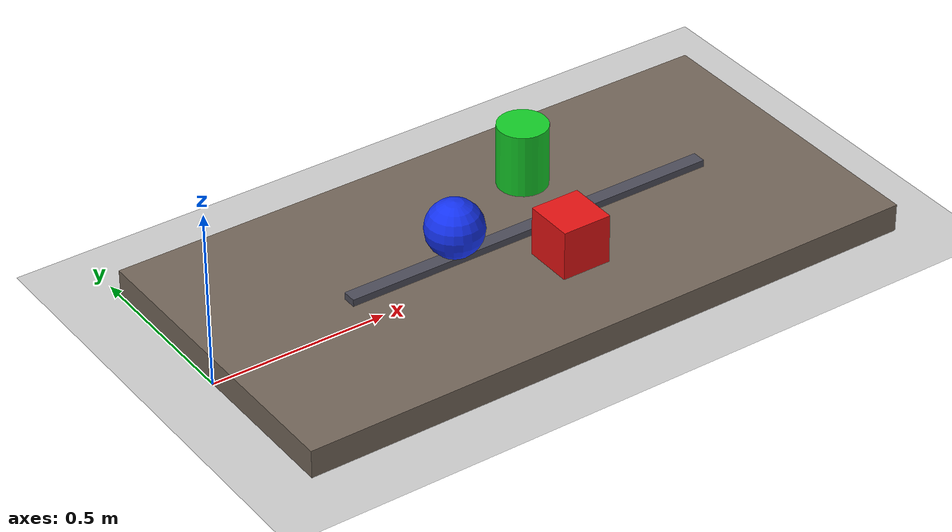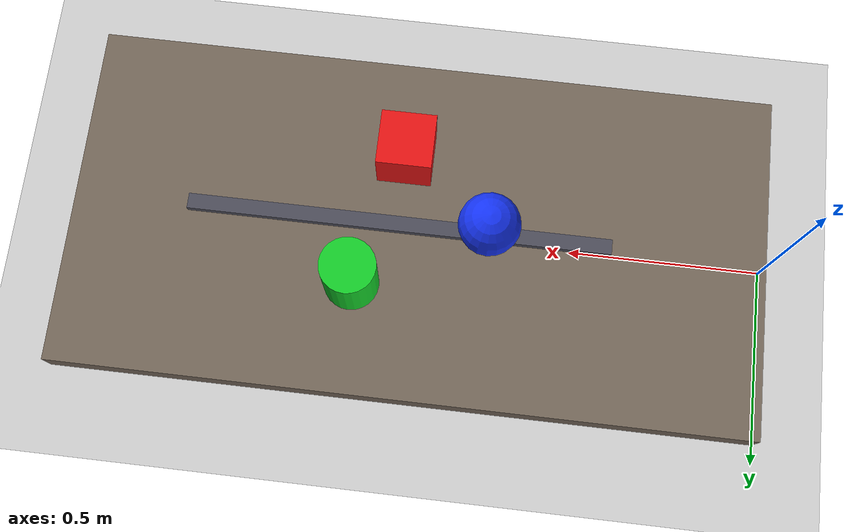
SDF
<sdf version="1.7">
 <world name="weld_cell">
  <gravity>0 0 -9.8</gravity>
  <magnetic_field>0 0 0</magnetic_field>
  <atmosphere type="adiabatic"/>
  <physics name="physics" type="dart">
   <max_step_size>0.001</max_step_size>
   <real_time_factor>1.0</real_time_factor>
  </physics>
  <plugin filename="gz-sim-physics-system" name="gz::sim::systems::Physics"/>
  <plugin filename="gz-sim-sensors-system" name="gz::sim::systems::Sensors">
   <render_engine>ogre2</render_engine>
  </plugin>
  <plugin filename="gz-sim-user-commands-system" name="gz::sim::systems::UserCommands"/>
  <plugin filename="gz-sim-scene-broadcaster-system" name="gz::sim::systems::SceneBroadcaster"/>
  <scene><ambient>1.0 1.0 1.0</ambient><background>0.8 0.8 0.8</background><grid>true</grid></scene>
  <light type="directional" name="sun">
   <pose>0 0 10 0 0 0</pose>
   <diffuse>0.8 0.8 0.8 1</diffuse>
   <specular>0.2 0.2 0.2 1</specular>
   <attenuation>
    <range>1000</range>
    <constant>0.9</constant>
    <linear>0.01</linear>
    <quadratic>0.001</quadratic>
   </attenuation>
   <direction>-0.5 0.1 -0.9</direction>
  </light>
  <model name="ground_plane">
   <static>true</static>
   <link name="link">
    <collision name="collision">
     <geometry><plane><normal>0 0 1</normal><size>100 100</size></plane></geometry>
    </collision>
    <visual name="visual">
     <geometry><plane><normal>0 0 1</normal><size>100 100</size></plane></geometry>
     <material><ambient>0.8 0.8 0.8 1</ambient><diffuse>0.8 0.8 0.8 1</diffuse></material>
    </visual>
   </link>
  </model>
  <model name="weld_table">
   <static>true</static>
   <link name="link">
    <visual name="visual">
     <geometry><box><size>1.8 0.9 0.08</size></box></geometry>
     <pose>0.9 0 0.04 0 0 0</pose>
     <material><ambient>0.25 0.22 0.2 1</ambient><diffuse>0.45 0.4 0.35 1</diffuse></material>
    </visual>
    <collision name="collision">
     <geometry><box><size>1.8 0.9 0.08</size></box></geometry>
     <pose>0.9 0 0.04 0 0 0</pose>
    </collision>
   </link>
  </model>
  <model name="weld_beam">
   <static>true</static>
   <link name="link">
    <visual name="visual">
     <geometry><box><size>1.1 0.04 0.02</size></box></geometry>
     <pose>0.95 0 0.09 0 0 0</pose>
     <material><ambient>0.15 0.15 0.18 1</ambient><diffuse>0.3 0.3 0.35 1</diffuse></material>
    </visual>
    <collision name="collision">
     <geometry><box><size>1.1 0.04 0.02</size></box></geometry>
     <pose>0.95 0 0.09 0 0 0</pose>
    </collision>
   </link>
  </model>
  <model name="camera_target_box_red">
   <static>true</static>
   <pose>0.95 -0.18 0.17 0 0 0</pose>
   <link name="link">
    <visual name="visual">
     <geometry><box><size>0.14 0.14 0.14</size></box></geometry>
     <material><ambient>0.8 0.05 0.05 1</ambient><diffuse>0.9 0.08 0.08 1</diffuse></material>
    </visual>
    <collision name="collision"><geometry><box><size>0.14 0.14 0.14</size></box></geometry></collision>
   </link>
  </model>
  <model name="camera_target_cylinder_green">
   <static>true</static>
   <pose>1.05 0.17 0.19 0 0 0</pose>
   <link name="link">
    <visual name="visual">
     <geometry><cylinder><radius>0.07</radius><length>0.18</length></cylinder></geometry>
     <material><ambient>0.05 0.65 0.12 1</ambient><diffuse>0.08 0.8 0.16 1</diffuse></material>
    </visual>
    <collision name="collision">
     <geometry><cylinder><radius>0.07</radius><length>0.18</length></cylinder></geometry>
    </collision>
   </link>
  </model>
  <model name="camera_target_sphere_blue">
   <static>true</static>
   <pose>0.72 0.0 0.18 0 0 0</pose>
   <link name="link">
    <visual name="visual">
     <geometry><sphere><radius>0.08</radius></sphere></geometry>
     <material><ambient>0.05 0.16 0.8 1</ambient><diffuse>0.08 0.2 0.95 1</diffuse></material>
    </visual>
    <collision name="collision"><geometry><sphere><radius>0.08</radius></sphere></geometry></collision>
   </link>
  </model>
 </world>
</sdf>
